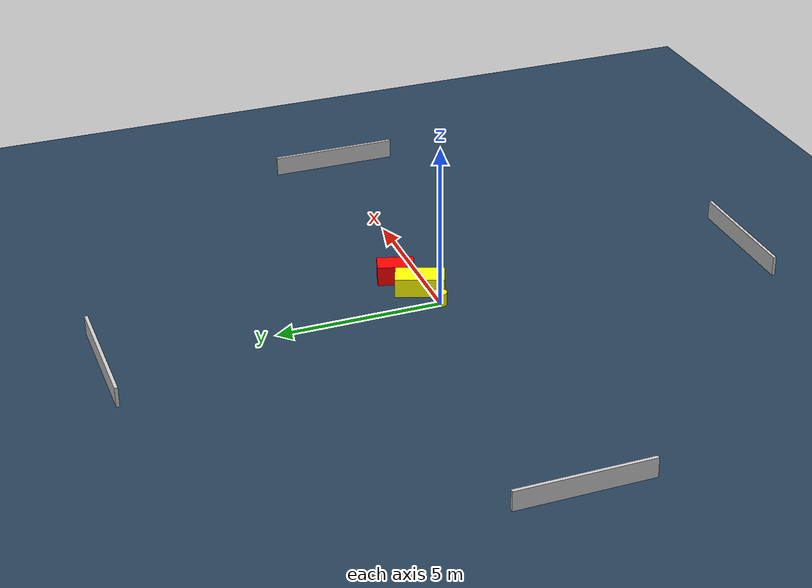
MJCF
<?xml version="1.0" ?>
<mujoco model="generated_environment">
  <option timestep="0.01" integrator="RK4" cone="elliptic"/>
  <default>
    <geom density="1"/>
  </default>
  <asset>
    <texture builtin="gradient" height="3072" name="skybox" rgb1="0.3 0.5 0.7" rgb2="0 0 0" type="skybox" width="512"/>
    <texture builtin="checker" height="300" name="groundplane" rgb1="0.2 0.3 0.4" rgb2="0.1 0.2 0.3" type="2d" width="300"/>
    <material name="groundplane" reflectance="0.2" texrepeat="5 5" texture="groundplane"/>
  </asset>
  <worldbody>
    <light dir="0 0 -1" directional="true" pos="0 0 1.5"/>
    <geom condim="3" friction="0.5 0.005 0.001" material="groundplane" name="floor" pos="0 0 0" size="0 0 0.05" type="plane"/>
    <body name="walls">
      <geom name="wall_1" condim="4" pos="-10.0 0.0 0.3" rgba="0.800000011920929 0.800000011920929 0.800000011920929 1.0" size="0.05 2.0 0.3" type="box"/>
      <geom name="wall_2" condim="4" pos="10.0 0.0 0.3" rgba="0.800000011920929 0.800000011920929 0.800000011920929 1.0" size="0.05 2.0 0.3" type="box"/>
      <geom name="wall_3" condim="4" pos="0.0 -10.0 0.3" rgba="0.800000011920929 0.800000011920929 0.800000011920929 1.0" size="2.0 0.05 0.3" type="box"/>
      <geom name="wall_4" condim="4" pos="0.0 10.0 0.3" rgba="0.800000011920929 0.800000011920929 0.800000011920929 1.0" size="2.0 0.05 0.3" type="box"/>
    </body>
    <body name="robot">
      <joint name="joint_x" type="slide" pos="0 0 0" axis="1 0 0"/>
      <joint name="joint_y" type="slide" pos="0 0 0" axis="0 1 0"/>
      <geom name="robot" type="cylinder" pos="0.0 0.0 0.2" size="0.2 0.2 0.0" mass="5.0" friction="1.0 0.005 0.0001" condim="4" rgba="1.0 1.0 0.0 1.0"/>
    </body>
    <body name="obstacle_1_movable">
      <geom name="obstacle_1_movable" condim="4" pos="0.8999492095015652 0.30485525282418396 0.3" euler="0 0 69.07077040520925" friction="0.0 0.005 0.001" rgba="1.0 1.0 0.0 1.0" size="0.7353079159636959 0.3709777312750412 0.3" type="box" mass="0.1"/>
      <joint type="free"/>
    </body>
    <body name="obstacle_2_static">
      <geom name="obstacle_2_static" condim="4" pos="1.8179112860170494 0.7403970406284714 0.3" euler="0 0 253.50120065870075" friction="0.0 0.005 0.001" rgba="1.0 0.0 0.0 1.0" size="0.5519367632080248 0.32387926977394277 0.3" type="box"/>
    </body>
  </worldbody>
  <actuator>
    <motor name="actuator_x" joint="joint_x" gear="1" ctrlrange="-1 1"/>
    <motor name="actuator_y" joint="joint_y" gear="1" ctrlrange="-1 1"/>
  </actuator>
</mujoco>
